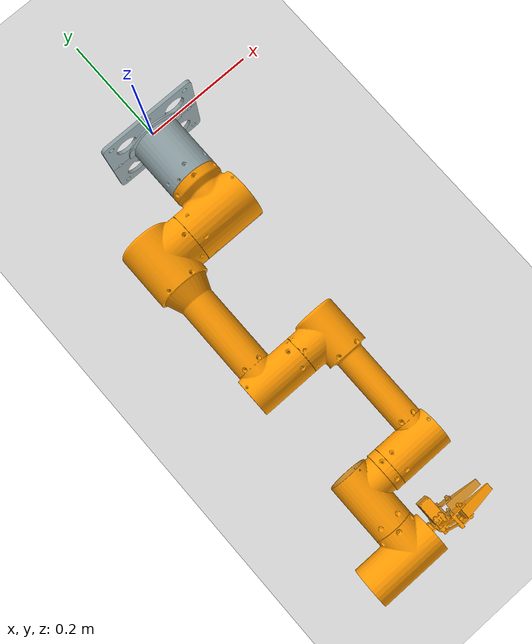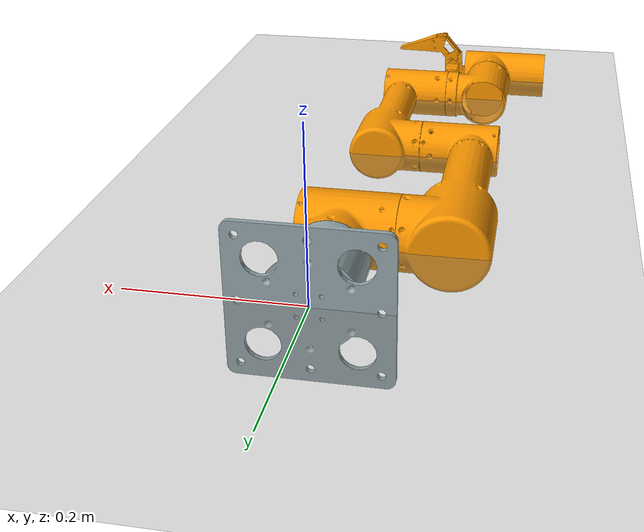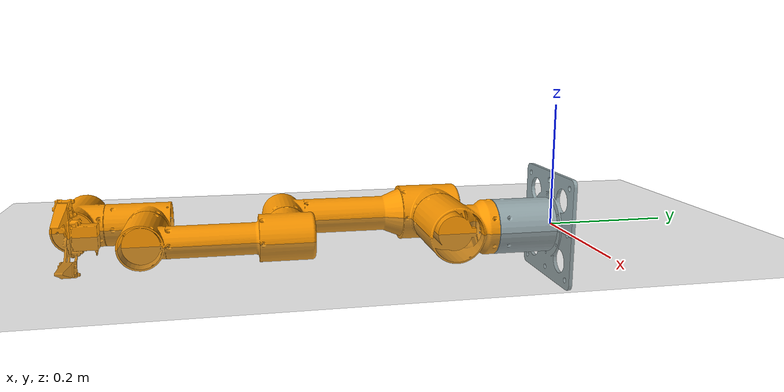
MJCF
<mujoco model="Alicia0421">
    <compiler angle="radian" meshdir="./"/>
    <statistic meansize="0.163642" extent="1.01088" center="-0.0856465 -0.395559 9.8098e-07"/>
    <asset>
        <mesh name="base_link" file="base_link.STL"/>
        <mesh name="Link1" file="Link1.STL"/>
        <mesh name="Link2" file="Link2.STL"/>
        <mesh name="Link3" file="Link3.STL"/>
        <mesh name="Link4" file="Link4.STL"/>
        <mesh name="Link5" file="Link5.STL"/>
        <mesh name="Link6" file="Link6.STL"/>
    </asset>
    <worldbody>
        <light directional="true" pos="-0.5 0.5 3" dir="0 0 -1"/>
        <geom name="floor" type="plane" conaffinity="1" size="100 100 .2"/>
        <geom type="mesh" contype="0" conaffinity="0" group="1" density="0" rgba="0.59216 0.66667 0.68235 1"
              mesh="base_link"/>
        <geom type="mesh" rgba="0.59216 0.66667 0.68235 1" mesh="base_link"/>
        <body name="Link1" pos="0 -0.0593 0" quat="0.707105 0.707108 0 0">
            <inertial pos="-0.0071825 -1.0002e-05 0.10355" quat="0.980387 0.000685499 -0.197067 -0.00249926"
                      mass="2.9587" diaginertia="0.00326445 0.0031575 0.00298215"/>
            <joint name="Joint1" pos="0 0 0" axis="0 0 1" range="-3.14 3.14"/>
            <geom type="mesh" contype="0" conaffinity="0" group="1" density="0" rgba="1 0.6 0 1" mesh="Link1"/>
            <geom type="mesh" rgba="1 0.6 0 1" mesh="Link1"/>
            <body name="Link2" pos="-0.05855 0 0.1174" quat="0.612371 -0.353553 -0.612374 0.353553">
                <inertial pos="0.073662 -0.1276 0.053582" quat="0.33025 0.636291 -0.367182 0.592661" mass="3.0982"
                          diaginertia="0.00417116 0.00409304 0.0034659"/>
                <joint name="Joint2" pos="0 0 0" axis="0 0 1" range="-1.57 1.57"/>
                <geom type="mesh" contype="0" conaffinity="0" group="1" density="0" rgba="1 0.6 0 1" mesh="Link2"/>
                <geom type="mesh" rgba="1 0.6 0 1" mesh="Link2"/>
                <body name="Link3" pos="0.1315 -0.22776 0.039" quat="-2.02097e-06 0.550194 0.835037 -3.06726e-06">
                    <inertial pos="-0.14374 0.017042 0.077622" quat="0.578739 0.480424 0.44098 0.489684" mass="2.6245"
                              diaginertia="0.00226747 0.00226254 0.001992"/>
                    <joint name="Joint3" pos="0 0 0" axis="0 0 -1" range="-3.14 3.14"/>
                    <geom type="mesh" contype="0" conaffinity="0" group="1" density="0" rgba="1 0.6 0 1" mesh="Link3"/>
                    <geom type="mesh" rgba="1 0.6 0 1" mesh="Link3"/>
                    <body name="Link4" pos="-0.22145 0.026259 0.06705"
                          quat="-2.02097e-06 0.550194 0.835037 -3.06726e-06">
                        <inertial pos="0.0072078 -0.012507 0.085681" quat="0.430513 0.309272 -0.201991 0.823534"
                                  mass="1.9968" diaginertia="0.0014192 0.00140303 0.00128276"/>
                        <joint name="Joint4" pos="0 0 0" axis="0 0 -1" range="-3.14 3.14"/>
                        <geom type="mesh" contype="0" conaffinity="0" group="1" density="0" rgba="1 0.6 0 1"
                              mesh="Link4"/>
                        <geom type="mesh" rgba="1 0.6 0 1" mesh="Link4"/>
                        <body name="Link5" pos="0.01275 -0.022084 0.09755" quat="0.612371 0.353553 0.612373 -0.353555">
                            <inertial pos="-0.01713 -8.1655e-06 0.083775"
                                      quat="-0.00118108 0.724568 -0.00231954 0.689198" mass="2.0172"
                                      diaginertia="0.00166162 0.0016093 0.00129578"/>
                            <joint name="Joint5" pos="0 0 0" axis="0 0 1" range="-3.14 3.14"/>
                            <geom type="mesh" contype="0" conaffinity="0" group="1" density="0" rgba="1 0.6 0 1"
                                  mesh="Link5"/>
                            <geom type="mesh" rgba="1 0.6 0 1" mesh="Link5"/>
                            <body name="Link6" pos="-0.0255 0 0.0918" quat="0.707105 0 -0.707108 0">
                                <inertial pos="-0.0070414 -0.00095826 -0.089958"
                                          quat="0.72101 0.692774 0.00840654 -0.0117591" mass="0.85167"
                                          diaginertia="0.000188127 0.000168574 0.000149869"/>
                                <joint name="Joint6" pos="0 0 0" axis="0 0 -1" range="-3.14 3.14"/>
                                <geom type="mesh" contype="0" conaffinity="0" group="1" density="0" rgba="1 0.6 0 1"
                                      mesh="Link6"/>
                                <geom type="mesh" rgba="1 0.6 0 1" mesh="Link6"/>
                            </body>
                        </body>
                    </body>
                </body>
            </body>
        </body>
    </worldbody>
</mujoco>
